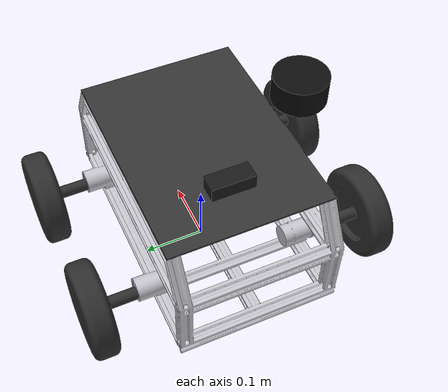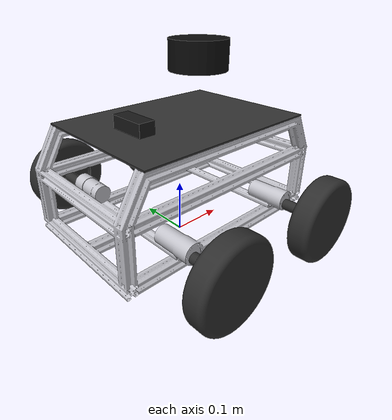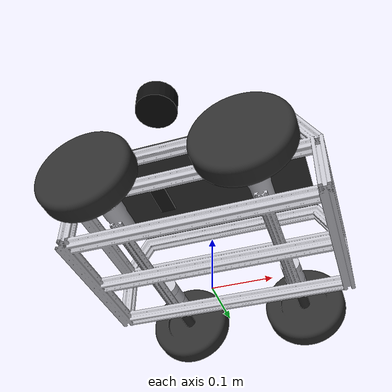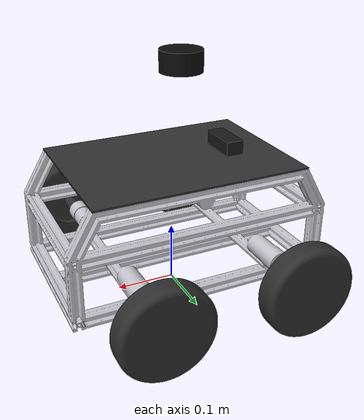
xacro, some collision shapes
<?xml version="1.0"?>
<robot xmlns:xacro="http://www.ros.org/wiki/xacro" name="plaguebot_base">
  <xacro:arg name="is_sim" default="true"/>
  <!-- Override in unified robot to use a combined YAML (base + arm controllers) -->
  <xacro:arg name="controllers_yaml" default="$(find plaguebot_base_description)/config/base_controllers.yaml"/>

  <!-- PROPIEDADES FÍSICAS — No modificar sin consultar -->
  <xacro:property name="wheel_radius"    value="0.0762"/>
  <xacro:property name="wheel_mass"      value="0.4"/>
  <xacro:property name="base_mass"       value="8.0"/>

  <!-- TODO: Orlando completa links, joints y macros aquí -->

  <!-- MATERIALES (RViz) -->
  <material name="aluminum">
    <color rgba="0.77 0.77 0.80 1.0"/>
  </material>
  <material name="lidar_black">
    <color rgba="0.05 0.05 0.05 1.0"/>
  </material>
  <material name="tire_black">
    <color rgba="0.18 0.18 0.18 1.0"/>
  </material>

  <xacro:if value="$(arg is_sim)">
  <gazebo>
    <plugin filename="gz_ros2_control-system" name="gz_ros2_control::GazeboSimROS2ControlPlugin">
      <parameters>$(arg controllers_yaml)</parameters>
    </plugin>
  </gazebo>
  </xacro:if>

  <xacro:include filename="$(find plaguebot_base_description)/urdf/plaguebot_base_ros2_control.xacro"/>
  <xacro:plaguebot_ros2_control is_sim="$(arg is_sim)"/>

  <!-- BASE FOOTPRINT (raíz del robot, proyección al suelo) -->
  <link name="base_footprint"/>

  <joint name="base_footprint_joint" type="fixed">
    <parent link="base_footprint"/>
    <child link="base_track_link"/>
    <origin xyz="0 0 0.0762" rpy="0 0 0"/>
  </joint>

  <!-- CHASIS PRINCIPAL -->
  <link name="base_track_link">
    <visual>
      <origin xyz="-0.30 0.41 -0.04" rpy="1.5708 0.0 0.0"/>
        <geometry>
          <mesh filename="package://plaguebot_base_description/meshes/visual/CHASIS_PLAGUEBOT.STL" scale="0.001 0.001 0.001"/>
        </geometry>
        <material name="aluminum"/>
    </visual>
    <collision>
       <origin xyz="-0.30 0.41 -0.04" rpy="1.5708 0.0 0.0"/>
        <geometry>
          <mesh filename="package://plaguebot_base_description/meshes/visual/CHASIS_PLAGUEBOT.STL" scale="0.001 0.001 0.001"/>
        </geometry>
    </collision>
    <inertial>
      <mass value="8.0"/>
      <inertia ixx="0.0773" iyy="0.1613" izz="0.1742" ixy="0" ixz="0" iyz="0"/>
    </inertial>
  </link>

  <!-- TAPA SUPERIOR -->
  <link name="top_plate_link">
    <visual>
      <origin xyz="0 0 0" rpy="0 0 0"/>
      <geometry>
        <box size="0.36 0.26 0.003"/>
      </geometry>
      <material name="dark_gray">
        <color rgba="0.2 0.2 0.2 0.9"/>
      </material>
    </visual>
    <collision>
      <origin xyz="0 0 0" rpy="0 0 0"/>
      <geometry>
        <box size="0.36 0.26 0.003"/>
      </geometry>
    </collision>
    <inertial>
      <mass value="0.3"/>
      <inertia ixx="0.00169" iyy="0.00846" izz="0.01012" ixy="0" ixz="0" iyz="0"/>
    </inertial>
  </link>

  <joint name="top_plate_joint" type="fixed">
    <parent link="base_track_link"/>
    <child link="top_plate_link"/>
    <origin xyz="0 0 0.15" rpy="0 0 0"/>
  </joint>

  <!-- LIDAR (RPLIDAR C1) -->
  <link name="laser">
    <visual>
      <origin xyz="0.027 -0.0348 0" rpy="1.5708 0 -3.1416"/>
      <geometry>
        <mesh filename="package://plaguebot_base_description/meshes/visual/RPLIDAR_C1.STL" scale="0.001 0.001 0.001"/>
      </geometry>
      <material name="lidar_black"/>
    </visual>
    <collision>
      <origin xyz="0.027 -0.0348 0" rpy="0 0 0"/>
      <geometry>
        <cylinder radius="0.04" length="0.04"/>
      </geometry>
    </collision>
    <inertial>
      <mass value="0.17"/>
      <inertia ixx="0.0001" iyy="0.0001" izz="0.0001" ixy="0" ixz="0" iyz="0"/>
    </inertial>
  </link>

  <joint name="laser_joint" type="fixed">
    <parent link="base_track_link"/>
    <child link="laser"/>
    <origin xyz="-0.1 -0.08 0.28" rpy="0 0 0"/>
  </joint>

  <!-- LLANTA DERECHA FRONTAL -->
  <link name="front_right_wheel_link">
    <visual>
      <origin xyz="-0.15 0.16 0.04" rpy="-1.5708 0.0 0.0"/>
        <geometry>
          <mesh filename="package://plaguebot_base_description/meshes/visual/LLANTA.STL" scale="0.001 0.001 0.001"/>
        </geometry>
        <material name="tire_black"/>
    </visual>
    <collision>
       <origin xyz="-0.15 0.16 0.04" rpy="-1.5708 0.0 0.0"/>
        <geometry>
          <mesh filename="package://plaguebot_base_description/meshes/visual/LLANTA.STL" scale="0.001 0.001 0.001"/>
        </geometry>
    </collision>
    <inertial>
      <mass value="0.4"/>
      <inertia ixx="0.000712" iyy="0.000712" izz="0.001160" ixy="0" ixz="0" iyz="0"/>
    </inertial>
  </link>

  <joint name="front_right_wheel_joint" type="continuous">
    <parent link="base_track_link"/>
    <child link="front_right_wheel_link"/>
    <origin rpy="0.0 0.0 0.0" xyz="-0.118 0.17 0.0"/>
    <axis xyz="0.0 1 0.0"/>
  </joint>

<!-- LLANTA DERECHA TRASERA-->
  <link name="rear_right_wheel_link">
    <visual>
      <origin xyz="-0.15 0.16 0.04" rpy="-1.5708 0.0 0.0"/>
        <geometry>
          <mesh filename="package://plaguebot_base_description/meshes/visual/LLANTA.STL" scale="0.001 0.001 0.001"/>
        </geometry>
        <material name="tire_black"/>
    </visual>
    <collision>
       <origin xyz="-0.15 0.16 0.04" rpy="-1.5708 0.0 0.0"/>
        <geometry>
          <mesh filename="package://plaguebot_base_description/meshes/visual/LLANTA.STL" scale="0.001 0.001 0.001"/>
        </geometry>
    </collision>
    <inertial>
      <mass value="0.4"/>
      <inertia ixx="0.000712" iyy="0.000712" izz="0.001160" ixy="0" ixz="0" iyz="0"/>
    </inertial>
  </link>

  <joint name="rear_right_wheel_joint" type="continuous">
    <parent link="base_track_link"/>
    <child link="rear_right_wheel_link"/>
    <origin rpy="0.0 0.0 0.0" xyz="0.1175 0.17 0.0"/>
    <axis xyz="0.0 1 0.0"/>
  </joint>

  <!-- LLANTA IZQUIERDA DELANTERA-->
  <link name="front_left_wheel_link">
    <visual>
      <origin xyz="-0.15 -0.16 -0.04" rpy="1.5708 0.0 0.0"/>
        <geometry>
          <mesh filename="package://plaguebot_base_description/meshes/visual/LLANTA.STL" scale="0.001 0.001 0.001"/>
        </geometry>
        <material name="tire_black"/>
    </visual>
    <collision>
       <origin xyz="-0.15 -0.16 -0.04" rpy="1.5708 0.0 0.0"/>
        <geometry>
          <mesh filename="package://plaguebot_base_description/meshes/visual/LLANTA.STL" scale="0.001 0.001 0.001"/>
        </geometry>
    </collision>
    <inertial>
      <mass value="0.4"/>
      <inertia ixx="0.000712" iyy="0.000712" izz="0.001160" ixy="0" ixz="0" iyz="0"/>
    </inertial>
  </link>

  <joint name="front_left_wheel_joint" type="continuous">
    <parent link="base_track_link"/>
    <child link="front_left_wheel_link"/>
    <origin rpy="0.0 0.0 0.0" xyz="-0.118 -0.17 0.0"/>
    <axis xyz="0.0 1 0.0"/>
  </joint>

  <!-- LLANTA IZQUIERDA TRASERA-->

<link name="rear_left_wheel_link">
    <visual>
      <origin xyz="-0.15 -0.16 -0.04" rpy="1.5708 0.0 0.0"/>
        <geometry>
          <mesh filename="package://plaguebot_base_description/meshes/visual/LLANTA.STL" scale="0.001 0.001 0.001"/>
        </geometry>
        <material name="tire_black"/>
    </visual>
    <collision>
       <origin xyz="-0.15 -0.16 -0.04" rpy="1.5708 0.0 0.0"/>
        <geometry>
          <mesh filename="package://plaguebot_base_description/meshes/visual/LLANTA.STL" scale="0.001 0.001 0.001"/>
        </geometry>
    </collision>
    <inertial>
      <mass value="0.4"/>
      <inertia ixx="0.000712" iyy="0.000712" izz="0.001160" ixy="0" ixz="0" iyz="0"/>
    </inertial>
  </link>

  <joint name="rear_left_wheel_joint" type="continuous">
    <parent link="base_track_link"/>
    <child link="rear_left_wheel_link"/>
    <origin rpy="0.0 0.0 0.0" xyz="0.1175 -0.17 0.0"/>
    <axis xyz="0.0 1 0.0"/>
  </joint>

  <!-- COLORES PARA GAZEBO SIM -->
  <gazebo reference="base_track_link">
    <visual>
      <material>
        <ambient>0.55 0.55 0.58 1.0</ambient>
        <diffuse>0.77 0.77 0.80 1.0</diffuse>
        <specular>0.90 0.90 0.92 1.0</specular>
      </material>
    </visual>
  </gazebo>

  <gazebo reference="laser">
    <visual>
      <material>
        <ambient>0.03 0.03 0.03 1.0</ambient>
        <diffuse>0.05 0.05 0.05 1.0</diffuse>
        <specular>0.10 0.10 0.10 1.0</specular>
      </material>
    </visual>
  </gazebo>

  <xacro:macro name="wheel_material" params="link_name">
    <gazebo reference="${link_name}">
      <visual>
        <material>
          <ambient>0.12 0.12 0.12 1.0</ambient>
          <diffuse>0.18 0.18 0.18 1.0</diffuse>
          <specular>0.35 0.35 0.35 1.0</specular>
        </material>
      </visual>
    </gazebo>
  </xacro:macro>

  <xacro:wheel_material link_name="front_right_wheel_link"/>
  <xacro:wheel_material link_name="rear_right_wheel_link"/>
  <xacro:wheel_material link_name="front_left_wheel_link"/>
  <xacro:wheel_material link_name="rear_left_wheel_link"/>

  <!-- RAZER KIYO RGB CAMERA (chassis, near LiDAR) -->
  <link name="kiyo_link">
    <visual>
      <origin xyz="0 0 0" rpy="0 0 0"/>
      <geometry><box size="0.03 0.07 0.03"/></geometry>
      <material name="kiyo_dark"><color rgba="0.1 0.1 0.1 1.0"/></material>
    </visual>
    <collision>
      <origin xyz="0 0 0" rpy="0 0 0"/>
      <geometry><box size="0.03 0.07 0.03"/></geometry>
    </collision>
    <inertial>
      <mass value="0.096"/>
      <inertia ixx="0.0001" iyy="0.0001" izz="0.0001" ixy="0" ixz="0" iyz="0"/>
    </inertial>
  </link>

  <joint name="kiyo_joint" type="fixed">
    <parent link="base_track_link"/>
    <child link="kiyo_link"/>
    <origin xyz="-0.1 0.0 0.16" rpy="0 0 0"/>
  </joint>

  <!-- IMU (fixed to chassis, no visual) -->
  <link name="imu_link">
    <inertial>
      <mass value="0.01"/>
      <inertia ixx="0.00001" iyy="0.00001" izz="0.00001" ixy="0" ixz="0" iyz="0"/>
    </inertial>
  </link>

  <joint name="imu_joint" type="fixed">
    <parent link="base_track_link"/>
    <child link="imu_link"/>
    <origin xyz="0 0 0" rpy="0 0 0"/>
  </joint>

  <!-- GAZEBO SENSOR PLUGINS (simulation only) -->
  <xacro:if value="$(arg is_sim)">

    <!-- RPLIDAR C1 — GPU LiDAR on existing laser link -->
    <gazebo reference="laser">
      <sensor type="gpu_lidar" name="rplidar_c1">
        <topic>/scan</topic>
        <gz_frame_id>laser</gz_frame_id>
        <update_rate>10</update_rate>
        <lidar>
          <scan>
            <horizontal>
              <samples>360</samples>
              <resolution>1</resolution>
              <min_angle>-3.14159</min_angle>
              <max_angle>3.14159</max_angle>
            </horizontal>
          </scan>
          <range>
            <min>0.25</min>
            <max>12.0</max>
            <resolution>0.01</resolution>
          </range>
        </lidar>
        <always_on>true</always_on>
        <visualize>false</visualize>
      </sensor>
    </gazebo>

    <!-- Razer Kiyo RGB camera -->
    <gazebo reference="kiyo_link">
      <sensor type="camera" name="kiyo">
        <topic>/kiyo/image_raw</topic>
        <gz_frame_id>kiyo_link</gz_frame_id>
        <update_rate>30</update_rate>
        <camera>
          <image>
            <width>1280</width>
            <height>720</height>
            <format>RGB_INT8</format>
          </image>
          <clip><near>0.05</near><far>50.0</far></clip>
        </camera>
        <always_on>true</always_on>
        <visualize>false</visualize>
      </sensor>
    </gazebo>

    <!-- IMU -->
    <gazebo reference="imu_link">
      <sensor type="imu" name="imu_sensor">
        <topic>/imu/data</topic>
        <gz_frame_id>imu_link</gz_frame_id>
        <update_rate>100</update_rate>
        <always_on>true</always_on>
        <imu>
          <angular_velocity><x><noise type="gaussian"><mean>0</mean><stddev>0.009</stddev></noise></x><y><noise type="gaussian"><mean>0</mean><stddev>0.009</stddev></noise></y><z><noise type="gaussian"><mean>0</mean><stddev>0.009</stddev></noise></z></angular_velocity>
          <linear_acceleration><x><noise type="gaussian"><mean>0</mean><stddev>0.021</stddev></noise></x><y><noise type="gaussian"><mean>0</mean><stddev>0.021</stddev></noise></y><z><noise type="gaussian"><mean>0</mean><stddev>0.021</stddev></noise></z></linear_acceleration>
        </imu>
      </sensor>
    </gazebo>

  </xacro:if>

</robot>
